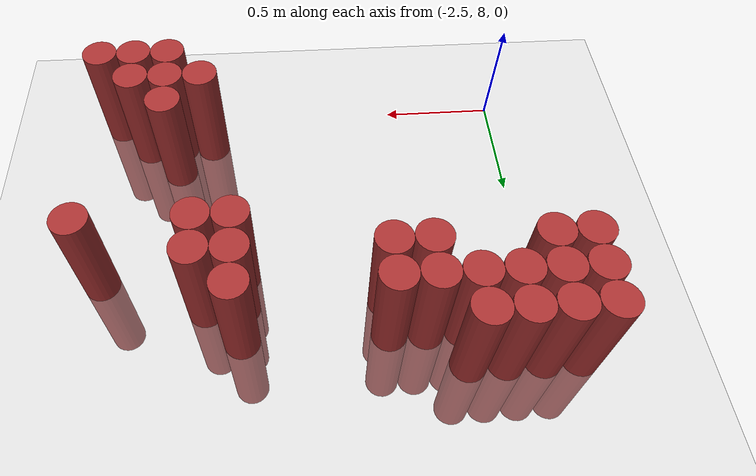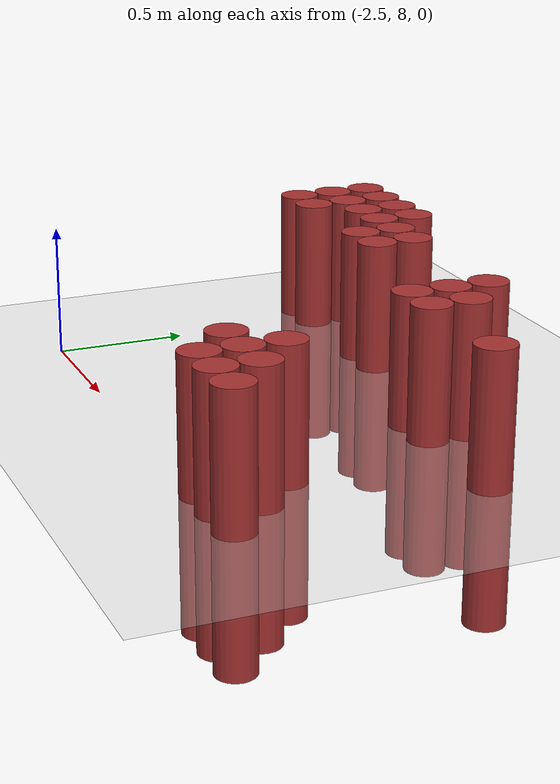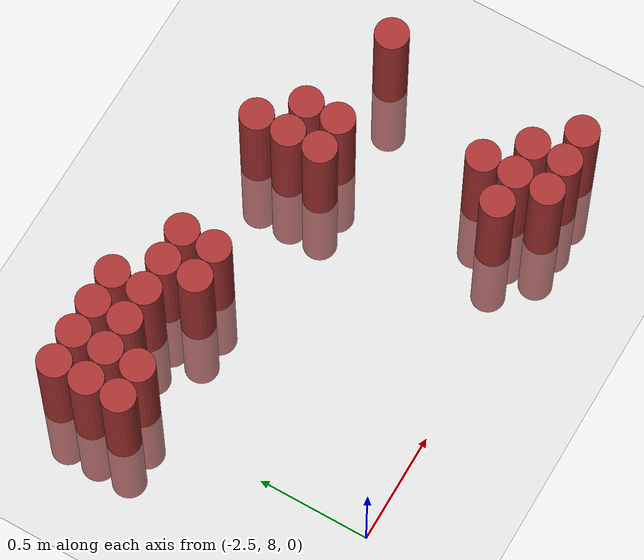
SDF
<sdf version="1.6">
 <world name="default">
  <model name="ground_plane">
   <static>1</static>
   <link name="link">
    <collision name="collision">
     <geometry><plane><normal>0 0 1</normal><size>100 100</size></plane></geometry>
     <surface><friction><ode><mu>100</mu><mu2>50</mu2></ode></friction></surface>
    </collision>
    <visual name="visual">
     <cast_shadows>0</cast_shadows>
     <geometry><plane><normal>0 0 1</normal><size>100 100</size></plane></geometry>
     <material>
      <script><uri>file://media/materials/scripts/gazebo.material</uri><name>Gazebo/Grey</name></script>
     </material>
    </visual>
   </link>
  </model>
  <model name="unit_cylinder_173">
   <static>1</static>
   <pose>-2.625000 9.075000 0.000000 0.000000 0.000000 0.000000</pose>
   <link name="link">
    <inertial>
     <mass>1</mass>
     <inertia><ixx>0.145833</ixx><ixy>0</ixy><ixz>0</ixz><iyy>0.145833</iyy><iyz>0</iyz><izz>0.125</izz></inertia>
    </inertial>
    <collision name="collision">
     <geometry><cylinder><radius>0.075000</radius><length>1</length></cylinder></geometry>
    </collision>
    <visual name="visual">
     <geometry><cylinder><radius>0.075000</radius><length>1</length></cylinder></geometry>
     <material>
      <ambient>0.648000 0.192000 0.192000 1</ambient>
      <diffuse>0.648000 0.192000 0.192000 1</diffuse>
     </material>
     <material>
      <script><name>Gazebo/Grey</name><uri>file://media/materials/scripts/gazebo.material</uri></script>
     </material>
    </visual>
   </link>
  </model>
  <model name="unit_cylinder_174">
   <static>1</static>
   <pose>-2.625000 9.225000 0.000000 0.000000 0.000000 0.000000</pose>
   <link name="link">
    <inertial>
     <mass>1</mass>
     <inertia><ixx>0.145833</ixx><ixy>0</ixy><ixz>0</ixz><iyy>0.145833</iyy><iyz>0</iyz><izz>0.125</izz></inertia>
    </inertial>
    <collision name="collision">
     <geometry><cylinder><radius>0.075000</radius><length>1</length></cylinder></geometry>
    </collision>
    <visual name="visual">
     <geometry><cylinder><radius>0.075000</radius><length>1</length></cylinder></geometry>
     <material>
      <ambient>0.648000 0.192000 0.192000 1</ambient>
      <diffuse>0.648000 0.192000 0.192000 1</diffuse>
     </material>
     <material>
      <script><name>Gazebo/Grey</name><uri>file://media/materials/scripts/gazebo.material</uri></script>
     </material>
    </visual>
   </link>
  </model>
  <model name="unit_cylinder_175">
   <static>1</static>
   <pose>-2.625000 9.375000 0.000000 0.000000 0.000000 0.000000</pose>
   <link name="link">
    <inertial>
     <mass>1</mass>
     <inertia><ixx>0.145833</ixx><ixy>0</ixy><ixz>0</ixz><iyy>0.145833</iyy><iyz>0</iyz><izz>0.125</izz></inertia>
    </inertial>
    <collision name="collision">
     <geometry><cylinder><radius>0.075000</radius><length>1</length></cylinder></geometry>
    </collision>
    <visual name="visual">
     <geometry><cylinder><radius>0.075000</radius><length>1</length></cylinder></geometry>
     <material>
      <ambient>0.648000 0.192000 0.192000 1</ambient>
      <diffuse>0.648000 0.192000 0.192000 1</diffuse>
     </material>
     <material>
      <script><name>Gazebo/Grey</name><uri>file://media/materials/scripts/gazebo.material</uri></script>
     </material>
    </visual>
   </link>
  </model>
  <model name="unit_cylinder_180">
   <static>1</static>
   <pose>-2.475000 9.075000 0.000000 0.000000 0.000000 0.000000</pose>
   <link name="link">
    <inertial>
     <mass>1</mass>
     <inertia><ixx>0.145833</ixx><ixy>0</ixy><ixz>0</ixz><iyy>0.145833</iyy><iyz>0</iyz><izz>0.125</izz></inertia>
    </inertial>
    <collision name="collision">
     <geometry><cylinder><radius>0.075000</radius><length>1</length></cylinder></geometry>
    </collision>
    <visual name="visual">
     <geometry><cylinder><radius>0.075000</radius><length>1</length></cylinder></geometry>
     <material>
      <ambient>0.648000 0.192000 0.192000 1</ambient>
      <diffuse>0.648000 0.192000 0.192000 1</diffuse>
     </material>
     <material>
      <script><name>Gazebo/Grey</name><uri>file://media/materials/scripts/gazebo.material</uri></script>
     </material>
    </visual>
   </link>
  </model>
  <model name="unit_cylinder_181">
   <static>1</static>
   <pose>-2.475000 9.225000 0.000000 0.000000 0.000000 0.000000</pose>
   <link name="link">
    <inertial>
     <mass>1</mass>
     <inertia><ixx>0.145833</ixx><ixy>0</ixy><ixz>0</ixz><iyy>0.145833</iyy><iyz>0</iyz><izz>0.125</izz></inertia>
    </inertial>
    <collision name="collision">
     <geometry><cylinder><radius>0.075000</radius><length>1</length></cylinder></geometry>
    </collision>
    <visual name="visual">
     <geometry><cylinder><radius>0.075000</radius><length>1</length></cylinder></geometry>
     <material>
      <ambient>0.648000 0.192000 0.192000 1</ambient>
      <diffuse>0.648000 0.192000 0.192000 1</diffuse>
     </material>
     <material>
      <script><name>Gazebo/Grey</name><uri>file://media/materials/scripts/gazebo.material</uri></script>
     </material>
    </visual>
   </link>
  </model>
  <model name="unit_cylinder_182">
   <static>1</static>
   <pose>-2.475000 9.375000 0.000000 0.000000 0.000000 0.000000</pose>
   <link name="link">
    <inertial>
     <mass>1</mass>
     <inertia><ixx>0.145833</ixx><ixy>0</ixy><ixz>0</ixz><iyy>0.145833</iyy><iyz>0</iyz><izz>0.125</izz></inertia>
    </inertial>
    <collision name="collision">
     <geometry><cylinder><radius>0.075000</radius><length>1</length></cylinder></geometry>
    </collision>
    <visual name="visual">
     <geometry><cylinder><radius>0.075000</radius><length>1</length></cylinder></geometry>
     <material>
      <ambient>0.648000 0.192000 0.192000 1</ambient>
      <diffuse>0.648000 0.192000 0.192000 1</diffuse>
     </material>
     <material>
      <script><name>Gazebo/Grey</name><uri>file://media/materials/scripts/gazebo.material</uri></script>
     </material>
    </visual>
   </link>
  </model>
  <model name="unit_cylinder_184">
   <static>1</static>
   <pose>-2.325000 9.225000 0.000000 0.000000 0.000000 0.000000</pose>
   <link name="link">
    <inertial>
     <mass>1</mass>
     <inertia><ixx>0.145833</ixx><ixy>0</ixy><ixz>0</ixz><iyy>0.145833</iyy><iyz>0</iyz><izz>0.125</izz></inertia>
    </inertial>
    <collision name="collision">
     <geometry><cylinder><radius>0.075000</radius><length>1</length></cylinder></geometry>
    </collision>
    <visual name="visual">
     <geometry><cylinder><radius>0.075000</radius><length>1</length></cylinder></geometry>
     <material>
      <ambient>0.648000 0.192000 0.192000 1</ambient>
      <diffuse>0.648000 0.192000 0.192000 1</diffuse>
     </material>
     <material>
      <script><name>Gazebo/Grey</name><uri>file://media/materials/scripts/gazebo.material</uri></script>
     </material>
    </visual>
   </link>
  </model>
  <model name="unit_cylinder_185">
   <static>1</static>
   <pose>-2.325000 9.375000 0.000000 0.000000 0.000000 0.000000</pose>
   <link name="link">
    <inertial>
     <mass>1</mass>
     <inertia><ixx>0.145833</ixx><ixy>0</ixy><ixz>0</ixz><iyy>0.145833</iyy><iyz>0</iyz><izz>0.125</izz></inertia>
    </inertial>
    <collision name="collision">
     <geometry><cylinder><radius>0.075000</radius><length>1</length></cylinder></geometry>
    </collision>
    <visual name="visual">
     <geometry><cylinder><radius>0.075000</radius><length>1</length></cylinder></geometry>
     <material>
      <ambient>0.648000 0.192000 0.192000 1</ambient>
      <diffuse>0.648000 0.192000 0.192000 1</diffuse>
     </material>
     <material>
      <script><name>Gazebo/Grey</name><uri>file://media/materials/scripts/gazebo.material</uri></script>
     </material>
    </visual>
   </link>
  </model>
  <model name="unit_cylinder_187">
   <static>1</static>
   <pose>-2.175000 9.225000 0.000000 0.000000 0.000000 0.000000</pose>
   <link name="link">
    <inertial>
     <mass>1</mass>
     <inertia><ixx>0.145833</ixx><ixy>0</ixy><ixz>0</ixz><iyy>0.145833</iyy><iyz>0</iyz><izz>0.125</izz></inertia>
    </inertial>
    <collision name="collision">
     <geometry><cylinder><radius>0.075000</radius><length>1</length></cylinder></geometry>
    </collision>
    <visual name="visual">
     <geometry><cylinder><radius>0.075000</radius><length>1</length></cylinder></geometry>
     <material>
      <ambient>0.648000 0.192000 0.192000 1</ambient>
      <diffuse>0.648000 0.192000 0.192000 1</diffuse>
     </material>
     <material>
      <script><name>Gazebo/Grey</name><uri>file://media/materials/scripts/gazebo.material</uri></script>
     </material>
    </visual>
   </link>
  </model>
  <model name="unit_cylinder_188">
   <static>1</static>
   <pose>-2.175000 9.375000 0.000000 0.000000 0.000000 0.000000</pose>
   <link name="link">
    <inertial>
     <mass>1</mass>
     <inertia><ixx>0.145833</ixx><ixy>0</ixy><ixz>0</ixz><iyy>0.145833</iyy><iyz>0</iyz><izz>0.125</izz></inertia>
    </inertial>
    <collision name="collision">
     <geometry><cylinder><radius>0.075000</radius><length>1</length></cylinder></geometry>
    </collision>
    <visual name="visual">
     <geometry><cylinder><radius>0.075000</radius><length>1</length></cylinder></geometry>
     <material>
      <ambient>0.648000 0.192000 0.192000 1</ambient>
      <diffuse>0.648000 0.192000 0.192000 1</diffuse>
     </material>
     <material>
      <script><name>Gazebo/Grey</name><uri>file://media/materials/scripts/gazebo.material</uri></script>
     </material>
    </visual>
   </link>
  </model>
  <model name="unit_cylinder_191">
   <static>1</static>
   <pose>-2.025000 9.075000 0.000000 0.000000 0.000000 0.000000</pose>
   <link name="link">
    <inertial>
     <mass>1</mass>
     <inertia><ixx>0.145833</ixx><ixy>0</ixy><ixz>0</ixz><iyy>0.145833</iyy><iyz>0</iyz><izz>0.125</izz></inertia>
    </inertial>
    <collision name="collision">
     <geometry><cylinder><radius>0.075000</radius><length>1</length></cylinder></geometry>
    </collision>
    <visual name="visual">
     <geometry><cylinder><radius>0.075000</radius><length>1</length></cylinder></geometry>
     <material>
      <ambient>0.648000 0.192000 0.192000 1</ambient>
      <diffuse>0.648000 0.192000 0.192000 1</diffuse>
     </material>
     <material>
      <script><name>Gazebo/Grey</name><uri>file://media/materials/scripts/gazebo.material</uri></script>
     </material>
    </visual>
   </link>
  </model>
  <model name="unit_cylinder_192">
   <static>1</static>
   <pose>-2.025000 9.225000 0.000000 0.000000 0.000000 0.000000</pose>
   <link name="link">
    <inertial>
     <mass>1</mass>
     <inertia><ixx>0.145833</ixx><ixy>0</ixy><ixz>0</ixz><iyy>0.145833</iyy><iyz>0</iyz><izz>0.125</izz></inertia>
    </inertial>
    <collision name="collision">
     <geometry><cylinder><radius>0.075000</radius><length>1</length></cylinder></geometry>
    </collision>
    <visual name="visual">
     <geometry><cylinder><radius>0.075000</radius><length>1</length></cylinder></geometry>
     <material>
      <ambient>0.648000 0.192000 0.192000 1</ambient>
      <diffuse>0.648000 0.192000 0.192000 1</diffuse>
     </material>
     <material>
      <script><name>Gazebo/Grey</name><uri>file://media/materials/scripts/gazebo.material</uri></script>
     </material>
    </visual>
   </link>
  </model>
  <model name="unit_cylinder_195">
   <static>1</static>
   <pose>-1.875000 9.075000 0.000000 0.000000 0.000000 0.000000</pose>
   <link name="link">
    <inertial>
     <mass>1</mass>
     <inertia><ixx>0.145833</ixx><ixy>0</ixy><ixz>0</ixz><iyy>0.145833</iyy><iyz>0</iyz><izz>0.125</izz></inertia>
    </inertial>
    <collision name="collision">
     <geometry><cylinder><radius>0.075000</radius><length>1</length></cylinder></geometry>
    </collision>
    <visual name="visual">
     <geometry><cylinder><radius>0.075000</radius><length>1</length></cylinder></geometry>
     <material>
      <ambient>0.648000 0.192000 0.192000 1</ambient>
      <diffuse>0.648000 0.192000 0.192000 1</diffuse>
     </material>
     <material>
      <script><name>Gazebo/Grey</name><uri>file://media/materials/scripts/gazebo.material</uri></script>
     </material>
    </visual>
   </link>
  </model>
  <model name="unit_cylinder_196">
   <static>1</static>
   <pose>-1.875000 9.225000 0.000000 0.000000 0.000000 0.000000</pose>
   <link name="link">
    <inertial>
     <mass>1</mass>
     <inertia><ixx>0.145833</ixx><ixy>0</ixy><ixz>0</ixz><iyy>0.145833</iyy><iyz>0</iyz><izz>0.125</izz></inertia>
    </inertial>
    <collision name="collision">
     <geometry><cylinder><radius>0.075000</radius><length>1</length></cylinder></geometry>
    </collision>
    <visual name="visual">
     <geometry><cylinder><radius>0.075000</radius><length>1</length></cylinder></geometry>
     <material>
      <ambient>0.648000 0.192000 0.192000 1</ambient>
      <diffuse>0.648000 0.192000 0.192000 1</diffuse>
     </material>
     <material>
      <script><name>Gazebo/Grey</name><uri>file://media/materials/scripts/gazebo.material</uri></script>
     </material>
    </visual>
   </link>
  </model>
  <model name="unit_cylinder_219">
   <static>1</static>
   <pose>-1.275000 8.925000 0.000000 0.000000 0.000000 0.000000</pose>
   <link name="link">
    <inertial>
     <mass>1</mass>
     <inertia><ixx>0.145833</ixx><ixy>0</ixy><ixz>0</ixz><iyy>0.145833</iyy><iyz>0</iyz><izz>0.125</izz></inertia>
    </inertial>
    <collision name="collision">
     <geometry><cylinder><radius>0.075000</radius><length>1</length></cylinder></geometry>
    </collision>
    <visual name="visual">
     <geometry><cylinder><radius>0.075000</radius><length>1</length></cylinder></geometry>
     <material>
      <ambient>0.648000 0.192000 0.192000 1</ambient>
      <diffuse>0.648000 0.192000 0.192000 1</diffuse>
     </material>
     <material>
      <script><name>Gazebo/Grey</name><uri>file://media/materials/scripts/gazebo.material</uri></script>
     </material>
    </visual>
   </link>
  </model>
  <model name="unit_cylinder_220">
   <static>1</static>
   <pose>-1.275000 9.075000 0.000000 0.000000 0.000000 0.000000</pose>
   <link name="link">
    <inertial>
     <mass>1</mass>
     <inertia><ixx>0.145833</ixx><ixy>0</ixy><ixz>0</ixz><iyy>0.145833</iyy><iyz>0</iyz><izz>0.125</izz></inertia>
    </inertial>
    <collision name="collision">
     <geometry><cylinder><radius>0.075000</radius><length>1</length></cylinder></geometry>
    </collision>
    <visual name="visual">
     <geometry><cylinder><radius>0.075000</radius><length>1</length></cylinder></geometry>
     <material>
      <ambient>0.648000 0.192000 0.192000 1</ambient>
      <diffuse>0.648000 0.192000 0.192000 1</diffuse>
     </material>
     <material>
      <script><name>Gazebo/Grey</name><uri>file://media/materials/scripts/gazebo.material</uri></script>
     </material>
    </visual>
   </link>
  </model>
  <model name="unit_cylinder_221">
   <static>1</static>
   <pose>-1.275000 9.225000 0.000000 0.000000 0.000000 0.000000</pose>
   <link name="link">
    <inertial>
     <mass>1</mass>
     <inertia><ixx>0.145833</ixx><ixy>0</ixy><ixz>0</ixz><iyy>0.145833</iyy><iyz>0</iyz><izz>0.125</izz></inertia>
    </inertial>
    <collision name="collision">
     <geometry><cylinder><radius>0.075000</radius><length>1</length></cylinder></geometry>
    </collision>
    <visual name="visual">
     <geometry><cylinder><radius>0.075000</radius><length>1</length></cylinder></geometry>
     <material>
      <ambient>0.648000 0.192000 0.192000 1</ambient>
      <diffuse>0.648000 0.192000 0.192000 1</diffuse>
     </material>
     <material>
      <script><name>Gazebo/Grey</name><uri>file://media/materials/scripts/gazebo.material</uri></script>
     </material>
    </visual>
   </link>
  </model>
  <model name="unit_cylinder_227">
   <static>1</static>
   <pose>-1.125000 8.175000 0.000000 0.000000 0.000000 0.000000</pose>
   <link name="link">
    <inertial>
     <mass>1</mass>
     <inertia><ixx>0.145833</ixx><ixy>0</ixy><ixz>0</ixz><iyy>0.145833</iyy><iyz>0</iyz><izz>0.125</izz></inertia>
    </inertial>
    <collision name="collision">
     <geometry><cylinder><radius>0.075000</radius><length>1</length></cylinder></geometry>
    </collision>
    <visual name="visual">
     <geometry><cylinder><radius>0.075000</radius><length>1</length></cylinder></geometry>
     <material>
      <ambient>0.648000 0.192000 0.192000 1</ambient>
      <diffuse>0.648000 0.192000 0.192000 1</diffuse>
     </material>
     <material>
      <script><name>Gazebo/Grey</name><uri>file://media/materials/scripts/gazebo.material</uri></script>
     </material>
    </visual>
   </link>
  </model>
  <model name="unit_cylinder_228">
   <static>1</static>
   <pose>-1.125000 8.925000 0.000000 0.000000 0.000000 0.000000</pose>
   <link name="link">
    <inertial>
     <mass>1</mass>
     <inertia><ixx>0.145833</ixx><ixy>0</ixy><ixz>0</ixz><iyy>0.145833</iyy><iyz>0</iyz><izz>0.125</izz></inertia>
    </inertial>
    <collision name="collision">
     <geometry><cylinder><radius>0.075000</radius><length>1</length></cylinder></geometry>
    </collision>
    <visual name="visual">
     <geometry><cylinder><radius>0.075000</radius><length>1</length></cylinder></geometry>
     <material>
      <ambient>0.648000 0.192000 0.192000 1</ambient>
      <diffuse>0.648000 0.192000 0.192000 1</diffuse>
     </material>
     <material>
      <script><name>Gazebo/Grey</name><uri>file://media/materials/scripts/gazebo.material</uri></script>
     </material>
    </visual>
   </link>
  </model>
  <model name="unit_cylinder_229">
   <static>1</static>
   <pose>-1.125000 9.075000 0.000000 0.000000 0.000000 0.000000</pose>
   <link name="link">
    <inertial>
     <mass>1</mass>
     <inertia><ixx>0.145833</ixx><ixy>0</ixy><ixz>0</ixz><iyy>0.145833</iyy><iyz>0</iyz><izz>0.125</izz></inertia>
    </inertial>
    <collision name="collision">
     <geometry><cylinder><radius>0.075000</radius><length>1</length></cylinder></geometry>
    </collision>
    <visual name="visual">
     <geometry><cylinder><radius>0.075000</radius><length>1</length></cylinder></geometry>
     <material>
      <ambient>0.648000 0.192000 0.192000 1</ambient>
      <diffuse>0.648000 0.192000 0.192000 1</diffuse>
     </material>
     <material>
      <script><name>Gazebo/Grey</name><uri>file://media/materials/scripts/gazebo.material</uri></script>
     </material>
    </visual>
   </link>
  </model>
  <model name="unit_cylinder_235">
   <static>1</static>
   <pose>-0.975000 8.025000 0.000000 0.000000 0.000000 0.000000</pose>
   <link name="link">
    <inertial>
     <mass>1</mass>
     <inertia><ixx>0.145833</ixx><ixy>0</ixy><ixz>0</ixz><iyy>0.145833</iyy><iyz>0</iyz><izz>0.125</izz></inertia>
    </inertial>
    <collision name="collision">
     <geometry><cylinder><radius>0.075000</radius><length>1</length></cylinder></geometry>
    </collision>
    <visual name="visual">
     <geometry><cylinder><radius>0.075000</radius><length>1</length></cylinder></geometry>
     <material>
      <ambient>0.648000 0.192000 0.192000 1</ambient>
      <diffuse>0.648000 0.192000 0.192000 1</diffuse>
     </material>
     <material>
      <script><name>Gazebo/Grey</name><uri>file://media/materials/scripts/gazebo.material</uri></script>
     </material>
    </visual>
   </link>
  </model>
  <model name="unit_cylinder_236">
   <static>1</static>
   <pose>-0.975000 8.175000 0.000000 0.000000 0.000000 0.000000</pose>
   <link name="link">
    <inertial>
     <mass>1</mass>
     <inertia><ixx>0.145833</ixx><ixy>0</ixy><ixz>0</ixz><iyy>0.145833</iyy><iyz>0</iyz><izz>0.125</izz></inertia>
    </inertial>
    <collision name="collision">
     <geometry><cylinder><radius>0.075000</radius><length>1</length></cylinder></geometry>
    </collision>
    <visual name="visual">
     <geometry><cylinder><radius>0.075000</radius><length>1</length></cylinder></geometry>
     <material>
      <ambient>0.648000 0.192000 0.192000 1</ambient>
      <diffuse>0.648000 0.192000 0.192000 1</diffuse>
     </material>
     <material>
      <script><name>Gazebo/Grey</name><uri>file://media/materials/scripts/gazebo.material</uri></script>
     </material>
    </visual>
   </link>
  </model>
  <model name="unit_cylinder_237">
   <static>1</static>
   <pose>-0.975000 8.325000 0.000000 0.000000 0.000000 0.000000</pose>
   <link name="link">
    <inertial>
     <mass>1</mass>
     <inertia><ixx>0.145833</ixx><ixy>0</ixy><ixz>0</ixz><iyy>0.145833</iyy><iyz>0</iyz><izz>0.125</izz></inertia>
    </inertial>
    <collision name="collision">
     <geometry><cylinder><radius>0.075000</radius><length>1</length></cylinder></geometry>
    </collision>
    <visual name="visual">
     <geometry><cylinder><radius>0.075000</radius><length>1</length></cylinder></geometry>
     <material>
      <ambient>0.648000 0.192000 0.192000 1</ambient>
      <diffuse>0.648000 0.192000 0.192000 1</diffuse>
     </material>
     <material>
      <script><name>Gazebo/Grey</name><uri>file://media/materials/scripts/gazebo.material</uri></script>
     </material>
    </visual>
   </link>
  </model>
  <model name="unit_cylinder_244">
   <static>1</static>
   <pose>-0.825000 8.025000 0.000000 0.000000 0.000000 0.000000</pose>
   <link name="link">
    <inertial>
     <mass>1</mass>
     <inertia><ixx>0.145833</ixx><ixy>0</ixy><ixz>0</ixz><iyy>0.145833</iyy><iyz>0</iyz><izz>0.125</izz></inertia>
    </inertial>
    <collision name="collision">
     <geometry><cylinder><radius>0.075000</radius><length>1</length></cylinder></geometry>
    </collision>
    <visual name="visual">
     <geometry><cylinder><radius>0.075000</radius><length>1</length></cylinder></geometry>
     <material>
      <ambient>0.648000 0.192000 0.192000 1</ambient>
      <diffuse>0.648000 0.192000 0.192000 1</diffuse>
     </material>
     <material>
      <script><name>Gazebo/Grey</name><uri>file://media/materials/scripts/gazebo.material</uri></script>
     </material>
    </visual>
   </link>
  </model>
  <model name="unit_cylinder_245">
   <static>1</static>
   <pose>-0.825000 8.175000 0.000000 0.000000 0.000000 0.000000</pose>
   <link name="link">
    <inertial>
     <mass>1</mass>
     <inertia><ixx>0.145833</ixx><ixy>0</ixy><ixz>0</ixz><iyy>0.145833</iyy><iyz>0</iyz><izz>0.125</izz></inertia>
    </inertial>
    <collision name="collision">
     <geometry><cylinder><radius>0.075000</radius><length>1</length></cylinder></geometry>
    </collision>
    <visual name="visual">
     <geometry><cylinder><radius>0.075000</radius><length>1</length></cylinder></geometry>
     <material>
      <ambient>0.648000 0.192000 0.192000 1</ambient>
      <diffuse>0.648000 0.192000 0.192000 1</diffuse>
     </material>
     <material>
      <script><name>Gazebo/Grey</name><uri>file://media/materials/scripts/gazebo.material</uri></script>
     </material>
    </visual>
   </link>
  </model>
  <model name="unit_cylinder_253">
   <static>1</static>
   <pose>-0.675000 8.025000 0.000000 0.000000 0.000000 0.000000</pose>
   <link name="link">
    <inertial>
     <mass>1</mass>
     <inertia><ixx>0.145833</ixx><ixy>0</ixy><ixz>0</ixz><iyy>0.145833</iyy><iyz>0</iyz><izz>0.125</izz></inertia>
    </inertial>
    <collision name="collision">
     <geometry><cylinder><radius>0.075000</radius><length>1</length></cylinder></geometry>
    </collision>
    <visual name="visual">
     <geometry><cylinder><radius>0.075000</radius><length>1</length></cylinder></geometry>
     <material>
      <ambient>0.648000 0.192000 0.192000 1</ambient>
      <diffuse>0.648000 0.192000 0.192000 1</diffuse>
     </material>
     <material>
      <script><name>Gazebo/Grey</name><uri>file://media/materials/scripts/gazebo.material</uri></script>
     </material>
    </visual>
   </link>
  </model>
  <model name="unit_cylinder_254">
   <static>1</static>
   <pose>-0.675000 8.925000 0.000000 0.000000 0.000000 0.000000</pose>
   <link name="link">
    <inertial>
     <mass>1</mass>
     <inertia><ixx>0.145833</ixx><ixy>0</ixy><ixz>0</ixz><iyy>0.145833</iyy><iyz>0</iyz><izz>0.125</izz></inertia>
    </inertial>
    <collision name="collision">
     <geometry><cylinder><radius>0.075000</radius><length>1</length></cylinder></geometry>
    </collision>
    <visual name="visual">
     <geometry><cylinder><radius>0.075000</radius><length>1</length></cylinder></geometry>
     <material>
      <ambient>0.648000 0.192000 0.192000 1</ambient>
      <diffuse>0.648000 0.192000 0.192000 1</diffuse>
     </material>
     <material>
      <script><name>Gazebo/Grey</name><uri>file://media/materials/scripts/gazebo.material</uri></script>
     </material>
    </visual>
   </link>
  </model>
 </world>
</sdf>
